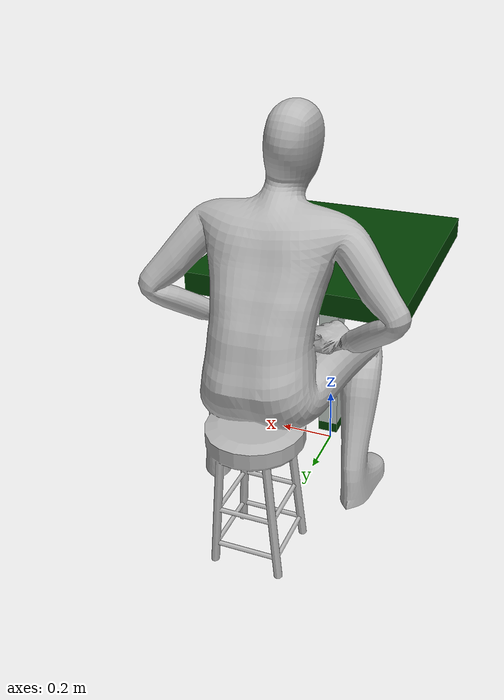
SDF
<?xml version="1.0"?>

<sdf version="1.6">
  <model name="customer">
    <pose>0.0 0.0 0.0 0.0 0.0 0.0</pose>
    <static>true</static>

    <link name="customer_main_link">
      <pose>0.0 0.0 0.05 0.0 0.0 0.0</pose>

      <collision name="collision">
        <pose>0 0 0.733276 0 0 0</pose>
        <geometry>
          <box>
            <size>0.737096 0.810806 0.07371</size>
          </box>
        </geometry>
      </collision>

      <visual name="visual">
        <pose>0 0 0 0 0 0</pose>
        <geometry>
          <mesh>
            <uri>model://customer/meshes/customer.dae</uri>
          </mesh>
        </geometry>
      </visual>
    </link>

  </model>
</sdf>
